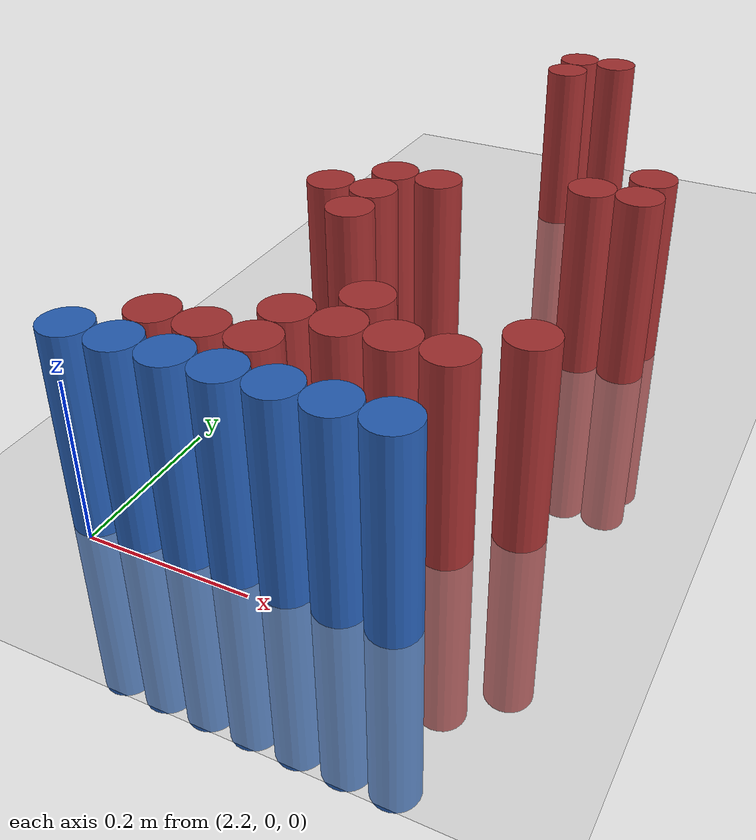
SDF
<sdf version="1.6">
 <world name="default">
  <model name="ground_plane">
   <static>1</static>
   <link name="link">
    <collision name="collision">
     <geometry><plane><normal>0 0 1</normal><size>100 100</size></plane></geometry>
     <surface><friction><ode><mu>100</mu><mu2>50</mu2></ode></friction></surface>
    </collision>
    <visual name="visual">
     <cast_shadows>0</cast_shadows>
     <geometry><plane><normal>0 0 1</normal><size>100 100</size></plane></geometry>
     <material>
      <script><uri>file://media/materials/scripts/gazebo.material</uri><name>Gazebo/Grey</name></script>
     </material>
    </visual>
   </link>
  </model>
  <model name="unit_cylinder_211">
   <static>1</static>
   <pose>2.370000 1.050000 0.000000 0.000000 0.000000 0.000000</pose>
   <link name="link">
    <inertial>
     <mass>1</mass>
     <inertia><ixx>0.145833</ixx><ixy>0</ixy><ixz>0</ixz><iyy>0.145833</iyy><iyz>0</iyz><izz>0.125</izz></inertia>
    </inertial>
    <collision name="collision">
     <geometry><cylinder><radius>0.030000</radius><length>0.5</length></cylinder></geometry>
    </collision>
    <visual name="visual">
     <geometry><cylinder><radius>0.030000</radius><length>0.5</length></cylinder></geometry>
     <material>
      <ambient>0.648000 0.192000 0.192000 1</ambient>
      <diffuse>0.648000 0.192000 0.192000 1</diffuse>
     </material>
     <material>
      <script><name>Gazebo/Grey</name><uri>file://media/materials/scripts/gazebo.material</uri></script>
     </material>
    </visual>
   </link>
  </model>
  <model name="unit_cylinder_212">
   <static>1</static>
   <pose>2.430000 1.050000 0.000000 0.000000 0.000000 0.000000</pose>
   <link name="link">
    <inertial>
     <mass>1</mass>
     <inertia><ixx>0.145833</ixx><ixy>0</ixy><ixz>0</ixz><iyy>0.145833</iyy><iyz>0</iyz><izz>0.125</izz></inertia>
    </inertial>
    <collision name="collision">
     <geometry><cylinder><radius>0.030000</radius><length>0.5</length></cylinder></geometry>
    </collision>
    <visual name="visual">
     <geometry><cylinder><radius>0.030000</radius><length>0.5</length></cylinder></geometry>
     <material>
      <ambient>0.648000 0.192000 0.192000 1</ambient>
      <diffuse>0.648000 0.192000 0.192000 1</diffuse>
     </material>
     <material>
      <script><name>Gazebo/Grey</name><uri>file://media/materials/scripts/gazebo.material</uri></script>
     </material>
    </visual>
   </link>
  </model>
  <model name="unit_cylinder_221">
   <static>1</static>
   <pose>2.370000 0.990000 0.000000 0.000000 0.000000 0.000000</pose>
   <link name="link">
    <inertial>
     <mass>1</mass>
     <inertia><ixx>0.145833</ixx><ixy>0</ixy><ixz>0</ixz><iyy>0.145833</iyy><iyz>0</iyz><izz>0.125</izz></inertia>
    </inertial>
    <collision name="collision">
     <geometry><cylinder><radius>0.030000</radius><length>0.5</length></cylinder></geometry>
    </collision>
    <visual name="visual">
     <geometry><cylinder><radius>0.030000</radius><length>0.5</length></cylinder></geometry>
     <material>
      <ambient>0.648000 0.192000 0.192000 1</ambient>
      <diffuse>0.648000 0.192000 0.192000 1</diffuse>
     </material>
     <material>
      <script><name>Gazebo/Grey</name><uri>file://media/materials/scripts/gazebo.material</uri></script>
     </material>
    </visual>
   </link>
  </model>
  <model name="unit_cylinder_252">
   <static>1</static>
   <pose>2.610000 0.630000 0.000000 0.000000 0.000000 0.000000</pose>
   <link name="link">
    <inertial>
     <mass>1</mass>
     <inertia><ixx>0.145833</ixx><ixy>0</ixy><ixz>0</ixz><iyy>0.145833</iyy><iyz>0</iyz><izz>0.125</izz></inertia>
    </inertial>
    <collision name="collision">
     <geometry><cylinder><radius>0.030000</radius><length>0.5</length></cylinder></geometry>
    </collision>
    <visual name="visual">
     <geometry><cylinder><radius>0.030000</radius><length>0.5</length></cylinder></geometry>
     <material>
      <ambient>0.648000 0.192000 0.192000 1</ambient>
      <diffuse>0.648000 0.192000 0.192000 1</diffuse>
     </material>
     <material>
      <script><name>Gazebo/Grey</name><uri>file://media/materials/scripts/gazebo.material</uri></script>
     </material>
    </visual>
   </link>
  </model>
  <model name="unit_cylinder_254">
   <static>1</static>
   <pose>2.550000 0.570000 0.000000 0.000000 0.000000 0.000000</pose>
   <link name="link">
    <inertial>
     <mass>1</mass>
     <inertia><ixx>0.145833</ixx><ixy>0</ixy><ixz>0</ixz><iyy>0.145833</iyy><iyz>0</iyz><izz>0.125</izz></inertia>
    </inertial>
    <collision name="collision">
     <geometry><cylinder><radius>0.030000</radius><length>0.5</length></cylinder></geometry>
    </collision>
    <visual name="visual">
     <geometry><cylinder><radius>0.030000</radius><length>0.5</length></cylinder></geometry>
     <material>
      <ambient>0.648000 0.192000 0.192000 1</ambient>
      <diffuse>0.648000 0.192000 0.192000 1</diffuse>
     </material>
     <material>
      <script><name>Gazebo/Grey</name><uri>file://media/materials/scripts/gazebo.material</uri></script>
     </material>
    </visual>
   </link>
  </model>
  <model name="unit_cylinder_255">
   <static>1</static>
   <pose>2.610000 0.570000 0.000000 0.000000 0.000000 0.000000</pose>
   <link name="link">
    <inertial>
     <mass>1</mass>
     <inertia><ixx>0.145833</ixx><ixy>0</ixy><ixz>0</ixz><iyy>0.145833</iyy><iyz>0</iyz><izz>0.125</izz></inertia>
    </inertial>
    <collision name="collision">
     <geometry><cylinder><radius>0.030000</radius><length>0.5</length></cylinder></geometry>
    </collision>
    <visual name="visual">
     <geometry><cylinder><radius>0.030000</radius><length>0.5</length></cylinder></geometry>
     <material>
      <ambient>0.648000 0.192000 0.192000 1</ambient>
      <diffuse>0.648000 0.192000 0.192000 1</diffuse>
     </material>
     <material>
      <script><name>Gazebo/Grey</name><uri>file://media/materials/scripts/gazebo.material</uri></script>
     </material>
    </visual>
   </link>
  </model>
  <model name="unit_cylinder_257">
   <static>1</static>
   <pose>2.310000 0.510000 0.000000 0.000000 0.000000 0.000000</pose>
   <link name="link">
    <inertial>
     <mass>1</mass>
     <inertia><ixx>0.145833</ixx><ixy>0</ixy><ixz>0</ixz><iyy>0.145833</iyy><iyz>0</iyz><izz>0.125</izz></inertia>
    </inertial>
    <collision name="collision">
     <geometry><cylinder><radius>0.030000</radius><length>0.5</length></cylinder></geometry>
    </collision>
    <visual name="visual">
     <geometry><cylinder><radius>0.030000</radius><length>0.5</length></cylinder></geometry>
     <material>
      <ambient>0.648000 0.192000 0.192000 1</ambient>
      <diffuse>0.648000 0.192000 0.192000 1</diffuse>
     </material>
     <material>
      <script><name>Gazebo/Grey</name><uri>file://media/materials/scripts/gazebo.material</uri></script>
     </material>
    </visual>
   </link>
  </model>
  <model name="unit_cylinder_258">
   <static>1</static>
   <pose>2.370000 0.510000 0.000000 0.000000 0.000000 0.000000</pose>
   <link name="link">
    <inertial>
     <mass>1</mass>
     <inertia><ixx>0.145833</ixx><ixy>0</ixy><ixz>0</ixz><iyy>0.145833</iyy><iyz>0</iyz><izz>0.125</izz></inertia>
    </inertial>
    <collision name="collision">
     <geometry><cylinder><radius>0.030000</radius><length>0.5</length></cylinder></geometry>
    </collision>
    <visual name="visual">
     <geometry><cylinder><radius>0.030000</radius><length>0.5</length></cylinder></geometry>
     <material>
      <ambient>0.648000 0.192000 0.192000 1</ambient>
      <diffuse>0.648000 0.192000 0.192000 1</diffuse>
     </material>
     <material>
      <script><name>Gazebo/Grey</name><uri>file://media/materials/scripts/gazebo.material</uri></script>
     </material>
    </visual>
   </link>
  </model>
  <model name="unit_cylinder_261">
   <static>1</static>
   <pose>2.250000 0.450000 0.000000 0.000000 0.000000 0.000000</pose>
   <link name="link">
    <inertial>
     <mass>1</mass>
     <inertia><ixx>0.145833</ixx><ixy>0</ixy><ixz>0</ixz><iyy>0.145833</iyy><iyz>0</iyz><izz>0.125</izz></inertia>
    </inertial>
    <collision name="collision">
     <geometry><cylinder><radius>0.030000</radius><length>0.5</length></cylinder></geometry>
    </collision>
    <visual name="visual">
     <geometry><cylinder><radius>0.030000</radius><length>0.5</length></cylinder></geometry>
     <material>
      <ambient>0.648000 0.192000 0.192000 1</ambient>
      <diffuse>0.648000 0.192000 0.192000 1</diffuse>
     </material>
     <material>
      <script><name>Gazebo/Grey</name><uri>file://media/materials/scripts/gazebo.material</uri></script>
     </material>
    </visual>
   </link>
  </model>
  <model name="unit_cylinder_262">
   <static>1</static>
   <pose>2.310000 0.450000 0.000000 0.000000 0.000000 0.000000</pose>
   <link name="link">
    <inertial>
     <mass>1</mass>
     <inertia><ixx>0.145833</ixx><ixy>0</ixy><ixz>0</ixz><iyy>0.145833</iyy><iyz>0</iyz><izz>0.125</izz></inertia>
    </inertial>
    <collision name="collision">
     <geometry><cylinder><radius>0.030000</radius><length>0.5</length></cylinder></geometry>
    </collision>
    <visual name="visual">
     <geometry><cylinder><radius>0.030000</radius><length>0.5</length></cylinder></geometry>
     <material>
      <ambient>0.648000 0.192000 0.192000 1</ambient>
      <diffuse>0.648000 0.192000 0.192000 1</diffuse>
     </material>
     <material>
      <script><name>Gazebo/Grey</name><uri>file://media/materials/scripts/gazebo.material</uri></script>
     </material>
    </visual>
   </link>
  </model>
  <model name="unit_cylinder_265">
   <static>1</static>
   <pose>2.310000 0.390000 0.000000 0.000000 0.000000 0.000000</pose>
   <link name="link">
    <inertial>
     <mass>1</mass>
     <inertia><ixx>0.145833</ixx><ixy>0</ixy><ixz>0</ixz><iyy>0.145833</iyy><iyz>0</iyz><izz>0.125</izz></inertia>
    </inertial>
    <collision name="collision">
     <geometry><cylinder><radius>0.030000</radius><length>0.5</length></cylinder></geometry>
    </collision>
    <visual name="visual">
     <geometry><cylinder><radius>0.030000</radius><length>0.5</length></cylinder></geometry>
     <material>
      <ambient>0.648000 0.192000 0.192000 1</ambient>
      <diffuse>0.648000 0.192000 0.192000 1</diffuse>
     </material>
     <material>
      <script><name>Gazebo/Grey</name><uri>file://media/materials/scripts/gazebo.material</uri></script>
     </material>
    </visual>
   </link>
  </model>
  <model name="unit_cylinder_273">
   <static>1</static>
   <pose>2.430000 0.210000 0.000000 0.000000 0.000000 0.000000</pose>
   <link name="link">
    <inertial>
     <mass>1</mass>
     <inertia><ixx>0.145833</ixx><ixy>0</ixy><ixz>0</ixz><iyy>0.145833</iyy><iyz>0</iyz><izz>0.125</izz></inertia>
    </inertial>
    <collision name="collision">
     <geometry><cylinder><radius>0.030000</radius><length>0.5</length></cylinder></geometry>
    </collision>
    <visual name="visual">
     <geometry><cylinder><radius>0.030000</radius><length>0.5</length></cylinder></geometry>
     <material>
      <ambient>0.648000 0.192000 0.192000 1</ambient>
      <diffuse>0.648000 0.192000 0.192000 1</diffuse>
     </material>
     <material>
      <script><name>Gazebo/Grey</name><uri>file://media/materials/scripts/gazebo.material</uri></script>
     </material>
    </visual>
   </link>
  </model>
  <model name="unit_cylinder_274">
   <static>1</static>
   <pose>2.610000 0.210000 0.000000 0.000000 0.000000 0.000000</pose>
   <link name="link">
    <inertial>
     <mass>1</mass>
     <inertia><ixx>0.145833</ixx><ixy>0</ixy><ixz>0</ixz><iyy>0.145833</iyy><iyz>0</iyz><izz>0.125</izz></inertia>
    </inertial>
    <collision name="collision">
     <geometry><cylinder><radius>0.030000</radius><length>0.5</length></cylinder></geometry>
    </collision>
    <visual name="visual">
     <geometry><cylinder><radius>0.030000</radius><length>0.5</length></cylinder></geometry>
     <material>
      <ambient>0.648000 0.192000 0.192000 1</ambient>
      <diffuse>0.648000 0.192000 0.192000 1</diffuse>
     </material>
     <material>
      <script><name>Gazebo/Grey</name><uri>file://media/materials/scripts/gazebo.material</uri></script>
     </material>
    </visual>
   </link>
  </model>
  <model name="unit_cylinder_279">
   <static>1</static>
   <pose>2.370000 0.150000 0.000000 0.000000 0.000000 0.000000</pose>
   <link name="link">
    <inertial>
     <mass>1</mass>
     <inertia><ixx>0.145833</ixx><ixy>0</ixy><ixz>0</ixz><iyy>0.145833</iyy><iyz>0</iyz><izz>0.125</izz></inertia>
    </inertial>
    <collision name="collision">
     <geometry><cylinder><radius>0.030000</radius><length>0.5</length></cylinder></geometry>
    </collision>
    <visual name="visual">
     <geometry><cylinder><radius>0.030000</radius><length>0.5</length></cylinder></geometry>
     <material>
      <ambient>0.648000 0.192000 0.192000 1</ambient>
      <diffuse>0.648000 0.192000 0.192000 1</diffuse>
     </material>
     <material>
      <script><name>Gazebo/Grey</name><uri>file://media/materials/scripts/gazebo.material</uri></script>
     </material>
    </visual>
   </link>
  </model>
  <model name="unit_cylinder_280">
   <static>1</static>
   <pose>2.430000 0.150000 0.000000 0.000000 0.000000 0.000000</pose>
   <link name="link">
    <inertial>
     <mass>1</mass>
     <inertia><ixx>0.145833</ixx><ixy>0</ixy><ixz>0</ixz><iyy>0.145833</iyy><iyz>0</iyz><izz>0.125</izz></inertia>
    </inertial>
    <collision name="collision">
     <geometry><cylinder><radius>0.030000</radius><length>0.5</length></cylinder></geometry>
    </collision>
    <visual name="visual">
     <geometry><cylinder><radius>0.030000</radius><length>0.5</length></cylinder></geometry>
     <material>
      <ambient>0.648000 0.192000 0.192000 1</ambient>
      <diffuse>0.648000 0.192000 0.192000 1</diffuse>
     </material>
     <material>
      <script><name>Gazebo/Grey</name><uri>file://media/materials/scripts/gazebo.material</uri></script>
     </material>
    </visual>
   </link>
  </model>
  <model name="unit_cylinder_281">
   <static>1</static>
   <pose>2.490000 0.150000 0.000000 0.000000 0.000000 0.000000</pose>
   <link name="link">
    <inertial>
     <mass>1</mass>
     <inertia><ixx>0.145833</ixx><ixy>0</ixy><ixz>0</ixz><iyy>0.145833</iyy><iyz>0</iyz><izz>0.125</izz></inertia>
    </inertial>
    <collision name="collision">
     <geometry><cylinder><radius>0.030000</radius><length>0.5</length></cylinder></geometry>
    </collision>
    <visual name="visual">
     <geometry><cylinder><radius>0.030000</radius><length>0.5</length></cylinder></geometry>
     <material>
      <ambient>0.648000 0.192000 0.192000 1</ambient>
      <diffuse>0.648000 0.192000 0.192000 1</diffuse>
     </material>
     <material>
      <script><name>Gazebo/Grey</name><uri>file://media/materials/scripts/gazebo.material</uri></script>
     </material>
    </visual>
   </link>
  </model>
  <model name="unit_cylinder_282">
   <static>1</static>
   <pose>2.550000 0.150000 0.000000 0.000000 0.000000 0.000000</pose>
   <link name="link">
    <inertial>
     <mass>1</mass>
     <inertia><ixx>0.145833</ixx><ixy>0</ixy><ixz>0</ixz><iyy>0.145833</iyy><iyz>0</iyz><izz>0.125</izz></inertia>
    </inertial>
    <collision name="collision">
     <geometry><cylinder><radius>0.030000</radius><length>0.5</length></cylinder></geometry>
    </collision>
    <visual name="visual">
     <geometry><cylinder><radius>0.030000</radius><length>0.5</length></cylinder></geometry>
     <material>
      <ambient>0.648000 0.192000 0.192000 1</ambient>
      <diffuse>0.648000 0.192000 0.192000 1</diffuse>
     </material>
     <material>
      <script><name>Gazebo/Grey</name><uri>file://media/materials/scripts/gazebo.material</uri></script>
     </material>
    </visual>
   </link>
  </model>
  <model name="unit_cylinder_289">
   <static>1</static>
   <pose>2.250000 0.090000 0.000000 0.000000 0.000000 0.000000</pose>
   <link name="link">
    <inertial>
     <mass>1</mass>
     <inertia><ixx>0.145833</ixx><ixy>0</ixy><ixz>0</ixz><iyy>0.145833</iyy><iyz>0</iyz><izz>0.125</izz></inertia>
    </inertial>
    <collision name="collision">
     <geometry><cylinder><radius>0.030000</radius><length>0.5</length></cylinder></geometry>
    </collision>
    <visual name="visual">
     <geometry><cylinder><radius>0.030000</radius><length>0.5</length></cylinder></geometry>
     <material>
      <ambient>0.648000 0.192000 0.192000 1</ambient>
      <diffuse>0.648000 0.192000 0.192000 1</diffuse>
     </material>
     <material>
      <script><name>Gazebo/Grey</name><uri>file://media/materials/scripts/gazebo.material</uri></script>
     </material>
    </visual>
   </link>
  </model>
  <model name="unit_cylinder_290">
   <static>1</static>
   <pose>2.310000 0.090000 0.000000 0.000000 0.000000 0.000000</pose>
   <link name="link">
    <inertial>
     <mass>1</mass>
     <inertia><ixx>0.145833</ixx><ixy>0</ixy><ixz>0</ixz><iyy>0.145833</iyy><iyz>0</iyz><izz>0.125</izz></inertia>
    </inertial>
    <collision name="collision">
     <geometry><cylinder><radius>0.030000</radius><length>0.5</length></cylinder></geometry>
    </collision>
    <visual name="visual">
     <geometry><cylinder><radius>0.030000</radius><length>0.5</length></cylinder></geometry>
     <material>
      <ambient>0.648000 0.192000 0.192000 1</ambient>
      <diffuse>0.648000 0.192000 0.192000 1</diffuse>
     </material>
     <material>
      <script><name>Gazebo/Grey</name><uri>file://media/materials/scripts/gazebo.material</uri></script>
     </material>
    </visual>
   </link>
  </model>
  <model name="unit_cylinder_291">
   <static>1</static>
   <pose>2.370000 0.090000 0.000000 0.000000 0.000000 0.000000</pose>
   <link name="link">
    <inertial>
     <mass>1</mass>
     <inertia><ixx>0.145833</ixx><ixy>0</ixy><ixz>0</ixz><iyy>0.145833</iyy><iyz>0</iyz><izz>0.125</izz></inertia>
    </inertial>
    <collision name="collision">
     <geometry><cylinder><radius>0.030000</radius><length>0.5</length></cylinder></geometry>
    </collision>
    <visual name="visual">
     <geometry><cylinder><radius>0.030000</radius><length>0.5</length></cylinder></geometry>
     <material>
      <ambient>0.648000 0.192000 0.192000 1</ambient>
      <diffuse>0.648000 0.192000 0.192000 1</diffuse>
     </material>
     <material>
      <script><name>Gazebo/Grey</name><uri>file://media/materials/scripts/gazebo.material</uri></script>
     </material>
    </visual>
   </link>
  </model>
  <model name="unit_cylinder_297">
   <static>1</static>
   <pose>2.190000 0.030000 0.000000 0.000000 0.000000 0.000000</pose>
   <link name="link">
    <inertial>
     <mass>1</mass>
     <inertia><ixx>0.145833</ixx><ixy>0</ixy><ixz>0</ixz><iyy>0.145833</iyy><iyz>0</iyz><izz>0.125</izz></inertia>
    </inertial>
    <collision name="collision">
     <geometry><cylinder><radius>0.030000</radius><length>0.5</length></cylinder></geometry>
    </collision>
    <visual name="visual">
     <geometry><cylinder><radius>0.030000</radius><length>0.5</length></cylinder></geometry>
     <material>
      <ambient>0.152000 0.379000 0.720000 1</ambient>
      <diffuse>0.152000 0.379000 0.720000 1</diffuse>
     </material>
     <material>
      <script><name>Gazebo/Grey</name><uri>file://media/materials/scripts/gazebo.material</uri></script>
     </material>
    </visual>
   </link>
  </model>
  <model name="unit_cylinder_298">
   <static>1</static>
   <pose>2.250000 0.030000 0.000000 0.000000 0.000000 0.000000</pose>
   <link name="link">
    <inertial>
     <mass>1</mass>
     <inertia><ixx>0.145833</ixx><ixy>0</ixy><ixz>0</ixz><iyy>0.145833</iyy><iyz>0</iyz><izz>0.125</izz></inertia>
    </inertial>
    <collision name="collision">
     <geometry><cylinder><radius>0.030000</radius><length>0.5</length></cylinder></geometry>
    </collision>
    <visual name="visual">
     <geometry><cylinder><radius>0.030000</radius><length>0.5</length></cylinder></geometry>
     <material>
      <ambient>0.152000 0.379000 0.720000 1</ambient>
      <diffuse>0.152000 0.379000 0.720000 1</diffuse>
     </material>
     <material>
      <script><name>Gazebo/Grey</name><uri>file://media/materials/scripts/gazebo.material</uri></script>
     </material>
    </visual>
   </link>
  </model>
  <model name="unit_cylinder_299">
   <static>1</static>
   <pose>2.310000 0.030000 0.000000 0.000000 0.000000 0.000000</pose>
   <link name="link">
    <inertial>
     <mass>1</mass>
     <inertia><ixx>0.145833</ixx><ixy>0</ixy><ixz>0</ixz><iyy>0.145833</iyy><iyz>0</iyz><izz>0.125</izz></inertia>
    </inertial>
    <collision name="collision">
     <geometry><cylinder><radius>0.030000</radius><length>0.5</length></cylinder></geometry>
    </collision>
    <visual name="visual">
     <geometry><cylinder><radius>0.030000</radius><length>0.5</length></cylinder></geometry>
     <material>
      <ambient>0.152000 0.379000 0.720000 1</ambient>
      <diffuse>0.152000 0.379000 0.720000 1</diffuse>
     </material>
     <material>
      <script><name>Gazebo/Grey</name><uri>file://media/materials/scripts/gazebo.material</uri></script>
     </material>
    </visual>
   </link>
  </model>
  <model name="unit_cylinder_300">
   <static>1</static>
   <pose>2.370000 0.030000 0.000000 0.000000 0.000000 0.000000</pose>
   <link name="link">
    <inertial>
     <mass>1</mass>
     <inertia><ixx>0.145833</ixx><ixy>0</ixy><ixz>0</ixz><iyy>0.145833</iyy><iyz>0</iyz><izz>0.125</izz></inertia>
    </inertial>
    <collision name="collision">
     <geometry><cylinder><radius>0.030000</radius><length>0.5</length></cylinder></geometry>
    </collision>
    <visual name="visual">
     <geometry><cylinder><radius>0.030000</radius><length>0.5</length></cylinder></geometry>
     <material>
      <ambient>0.152000 0.379000 0.720000 1</ambient>
      <diffuse>0.152000 0.379000 0.720000 1</diffuse>
     </material>
     <material>
      <script><name>Gazebo/Grey</name><uri>file://media/materials/scripts/gazebo.material</uri></script>
     </material>
    </visual>
   </link>
  </model>
  <model name="unit_cylinder_301">
   <static>1</static>
   <pose>2.430000 0.030000 0.000000 0.000000 0.000000 0.000000</pose>
   <link name="link">
    <inertial>
     <mass>1</mass>
     <inertia><ixx>0.145833</ixx><ixy>0</ixy><ixz>0</ixz><iyy>0.145833</iyy><iyz>0</iyz><izz>0.125</izz></inertia>
    </inertial>
    <collision name="collision">
     <geometry><cylinder><radius>0.030000</radius><length>0.5</length></cylinder></geometry>
    </collision>
    <visual name="visual">
     <geometry><cylinder><radius>0.030000</radius><length>0.5</length></cylinder></geometry>
     <material>
      <ambient>0.152000 0.379000 0.720000 1</ambient>
      <diffuse>0.152000 0.379000 0.720000 1</diffuse>
     </material>
     <material>
      <script><name>Gazebo/Grey</name><uri>file://media/materials/scripts/gazebo.material</uri></script>
     </material>
    </visual>
   </link>
  </model>
  <model name="unit_cylinder_302">
   <static>1</static>
   <pose>2.490000 0.030000 0.000000 0.000000 0.000000 0.000000</pose>
   <link name="link">
    <inertial>
     <mass>1</mass>
     <inertia><ixx>0.145833</ixx><ixy>0</ixy><ixz>0</ixz><iyy>0.145833</iyy><iyz>0</iyz><izz>0.125</izz></inertia>
    </inertial>
    <collision name="collision">
     <geometry><cylinder><radius>0.030000</radius><length>0.5</length></cylinder></geometry>
    </collision>
    <visual name="visual">
     <geometry><cylinder><radius>0.030000</radius><length>0.5</length></cylinder></geometry>
     <material>
      <ambient>0.152000 0.379000 0.720000 1</ambient>
      <diffuse>0.152000 0.379000 0.720000 1</diffuse>
     </material>
     <material>
      <script><name>Gazebo/Grey</name><uri>file://media/materials/scripts/gazebo.material</uri></script>
     </material>
    </visual>
   </link>
  </model>
  <model name="unit_cylinder_303">
   <static>1</static>
   <pose>2.550000 0.030000 0.000000 0.000000 0.000000 0.000000</pose>
   <link name="link">
    <inertial>
     <mass>1</mass>
     <inertia><ixx>0.145833</ixx><ixy>0</ixy><ixz>0</ixz><iyy>0.145833</iyy><iyz>0</iyz><izz>0.125</izz></inertia>
    </inertial>
    <collision name="collision">
     <geometry><cylinder><radius>0.030000</radius><length>0.5</length></cylinder></geometry>
    </collision>
    <visual name="visual">
     <geometry><cylinder><radius>0.030000</radius><length>0.5</length></cylinder></geometry>
     <material>
      <ambient>0.152000 0.379000 0.720000 1</ambient>
      <diffuse>0.152000 0.379000 0.720000 1</diffuse>
     </material>
     <material>
      <script><name>Gazebo/Grey</name><uri>file://media/materials/scripts/gazebo.material</uri></script>
     </material>
    </visual>
   </link>
  </model>
 </world>
</sdf>
